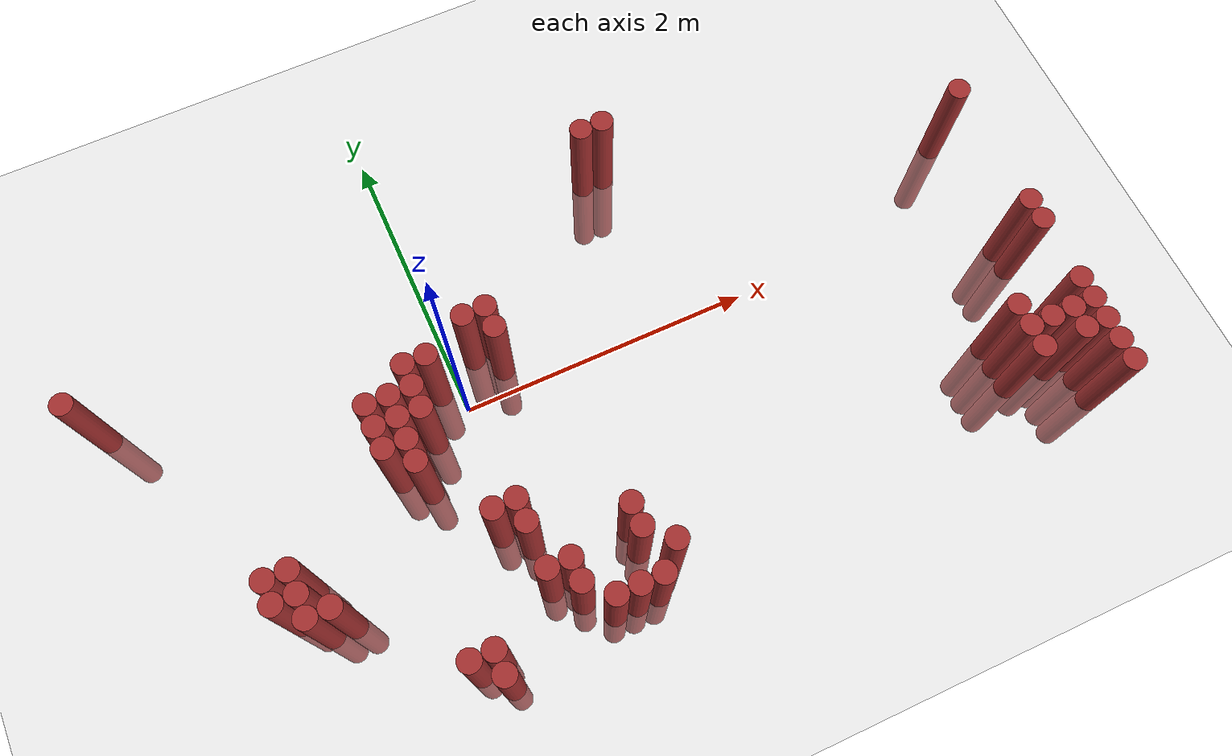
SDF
<sdf version="1.6">
 <world name="default">
  <model name="ground_plane">
   <static>1</static>
   <link name="link">
    <collision name="collision">
     <geometry><plane><normal>0 0 1</normal><size>100 100</size></plane></geometry>
     <surface><friction><ode><mu>100</mu><mu2>50</mu2></ode></friction></surface>
    </collision>
    <visual name="visual">
     <cast_shadows>0</cast_shadows>
     <geometry><plane><normal>0 0 1</normal><size>100 100</size></plane></geometry>
     <material>
      <script><uri>file://media/materials/scripts/gazebo.material</uri><name>Gazebo/Grey</name></script>
     </material>
    </visual>
   </link>
  </model>
  <model name="unit_cylinder_334">
   <static>1</static>
   <pose>-2.225000 0.775000 0.000000 0.000000 0.000000 0.000000</pose>
   <link name="link">
    <inertial>
     <mass>1</mass>
     <inertia><ixx>0.145833</ixx><ixy>0</ixy><ixz>0</ixz><iyy>0.145833</iyy><iyz>0</iyz><izz>0.125</izz></inertia>
    </inertial>
    <collision name="collision">
     <geometry><cylinder><radius>0.075000</radius><length>1.5</length></cylinder></geometry>
    </collision>
    <visual name="visual">
     <geometry><cylinder><radius>0.075000</radius><length>1.5</length></cylinder></geometry>
     <material>
      <ambient>0.648000 0.192000 0.192000 1</ambient>
      <diffuse>0.648000 0.192000 0.192000 1</diffuse>
     </material>
     <material>
      <script><name>Gazebo/Grey</name><uri>file://media/materials/scripts/gazebo.material</uri></script>
     </material>
    </visual>
   </link>
  </model>
  <model name="unit_cylinder_353">
   <static>1</static>
   <pose>-1.475000 -0.875000 0.000000 0.000000 0.000000 0.000000</pose>
   <link name="link">
    <inertial>
     <mass>1</mass>
     <inertia><ixx>0.145833</ixx><ixy>0</ixy><ixz>0</ixz><iyy>0.145833</iyy><iyz>0</iyz><izz>0.125</izz></inertia>
    </inertial>
    <collision name="collision">
     <geometry><cylinder><radius>0.075000</radius><length>1.5</length></cylinder></geometry>
    </collision>
    <visual name="visual">
     <geometry><cylinder><radius>0.075000</radius><length>1.5</length></cylinder></geometry>
     <material>
      <ambient>0.648000 0.192000 0.192000 1</ambient>
      <diffuse>0.648000 0.192000 0.192000 1</diffuse>
     </material>
     <material>
      <script><name>Gazebo/Grey</name><uri>file://media/materials/scripts/gazebo.material</uri></script>
     </material>
    </visual>
   </link>
  </model>
  <model name="unit_cylinder_354">
   <static>1</static>
   <pose>-1.475000 -0.725000 0.000000 0.000000 0.000000 0.000000</pose>
   <link name="link">
    <inertial>
     <mass>1</mass>
     <inertia><ixx>0.145833</ixx><ixy>0</ixy><ixz>0</ixz><iyy>0.145833</iyy><iyz>0</iyz><izz>0.125</izz></inertia>
    </inertial>
    <collision name="collision">
     <geometry><cylinder><radius>0.075000</radius><length>1.5</length></cylinder></geometry>
    </collision>
    <visual name="visual">
     <geometry><cylinder><radius>0.075000</radius><length>1.5</length></cylinder></geometry>
     <material>
      <ambient>0.648000 0.192000 0.192000 1</ambient>
      <diffuse>0.648000 0.192000 0.192000 1</diffuse>
     </material>
     <material>
      <script><name>Gazebo/Grey</name><uri>file://media/materials/scripts/gazebo.material</uri></script>
     </material>
    </visual>
   </link>
  </model>
  <model name="unit_cylinder_361">
   <static>1</static>
   <pose>-1.325000 -1.025000 0.000000 0.000000 0.000000 0.000000</pose>
   <link name="link">
    <inertial>
     <mass>1</mass>
     <inertia><ixx>0.145833</ixx><ixy>0</ixy><ixz>0</ixz><iyy>0.145833</iyy><iyz>0</iyz><izz>0.125</izz></inertia>
    </inertial>
    <collision name="collision">
     <geometry><cylinder><radius>0.075000</radius><length>1.5</length></cylinder></geometry>
    </collision>
    <visual name="visual">
     <geometry><cylinder><radius>0.075000</radius><length>1.5</length></cylinder></geometry>
     <material>
      <ambient>0.648000 0.192000 0.192000 1</ambient>
      <diffuse>0.648000 0.192000 0.192000 1</diffuse>
     </material>
     <material>
      <script><name>Gazebo/Grey</name><uri>file://media/materials/scripts/gazebo.material</uri></script>
     </material>
    </visual>
   </link>
  </model>
  <model name="unit_cylinder_362">
   <static>1</static>
   <pose>-1.325000 -0.875000 0.000000 0.000000 0.000000 0.000000</pose>
   <link name="link">
    <inertial>
     <mass>1</mass>
     <inertia><ixx>0.145833</ixx><ixy>0</ixy><ixz>0</ixz><iyy>0.145833</iyy><iyz>0</iyz><izz>0.125</izz></inertia>
    </inertial>
    <collision name="collision">
     <geometry><cylinder><radius>0.075000</radius><length>1.5</length></cylinder></geometry>
    </collision>
    <visual name="visual">
     <geometry><cylinder><radius>0.075000</radius><length>1.5</length></cylinder></geometry>
     <material>
      <ambient>0.648000 0.192000 0.192000 1</ambient>
      <diffuse>0.648000 0.192000 0.192000 1</diffuse>
     </material>
     <material>
      <script><name>Gazebo/Grey</name><uri>file://media/materials/scripts/gazebo.material</uri></script>
     </material>
    </visual>
   </link>
  </model>
  <model name="unit_cylinder_363">
   <static>1</static>
   <pose>-1.325000 -0.725000 0.000000 0.000000 0.000000 0.000000</pose>
   <link name="link">
    <inertial>
     <mass>1</mass>
     <inertia><ixx>0.145833</ixx><ixy>0</ixy><ixz>0</ixz><iyy>0.145833</iyy><iyz>0</iyz><izz>0.125</izz></inertia>
    </inertial>
    <collision name="collision">
     <geometry><cylinder><radius>0.075000</radius><length>1.5</length></cylinder></geometry>
    </collision>
    <visual name="visual">
     <geometry><cylinder><radius>0.075000</radius><length>1.5</length></cylinder></geometry>
     <material>
      <ambient>0.648000 0.192000 0.192000 1</ambient>
      <diffuse>0.648000 0.192000 0.192000 1</diffuse>
     </material>
     <material>
      <script><name>Gazebo/Grey</name><uri>file://media/materials/scripts/gazebo.material</uri></script>
     </material>
    </visual>
   </link>
  </model>
  <model name="unit_cylinder_369">
   <static>1</static>
   <pose>-1.175000 -1.025000 0.000000 0.000000 0.000000 0.000000</pose>
   <link name="link">
    <inertial>
     <mass>1</mass>
     <inertia><ixx>0.145833</ixx><ixy>0</ixy><ixz>0</ixz><iyy>0.145833</iyy><iyz>0</iyz><izz>0.125</izz></inertia>
    </inertial>
    <collision name="collision">
     <geometry><cylinder><radius>0.075000</radius><length>1.5</length></cylinder></geometry>
    </collision>
    <visual name="visual">
     <geometry><cylinder><radius>0.075000</radius><length>1.5</length></cylinder></geometry>
     <material>
      <ambient>0.648000 0.192000 0.192000 1</ambient>
      <diffuse>0.648000 0.192000 0.192000 1</diffuse>
     </material>
     <material>
      <script><name>Gazebo/Grey</name><uri>file://media/materials/scripts/gazebo.material</uri></script>
     </material>
    </visual>
   </link>
  </model>
  <model name="unit_cylinder_379">
   <static>1</static>
   <pose>-0.575000 -1.625000 0.000000 0.000000 0.000000 0.000000</pose>
   <link name="link">
    <inertial>
     <mass>1</mass>
     <inertia><ixx>0.145833</ixx><ixy>0</ixy><ixz>0</ixz><iyy>0.145833</iyy><iyz>0</iyz><izz>0.125</izz></inertia>
    </inertial>
    <collision name="collision">
     <geometry><cylinder><radius>0.075000</radius><length>1.5</length></cylinder></geometry>
    </collision>
    <visual name="visual">
     <geometry><cylinder><radius>0.075000</radius><length>1.5</length></cylinder></geometry>
     <material>
      <ambient>0.648000 0.192000 0.192000 1</ambient>
      <diffuse>0.648000 0.192000 0.192000 1</diffuse>
     </material>
     <material>
      <script><name>Gazebo/Grey</name><uri>file://media/materials/scripts/gazebo.material</uri></script>
     </material>
    </visual>
   </link>
  </model>
  <model name="unit_cylinder_380">
   <static>1</static>
   <pose>-0.575000 -0.275000 0.000000 0.000000 0.000000 0.000000</pose>
   <link name="link">
    <inertial>
     <mass>1</mass>
     <inertia><ixx>0.145833</ixx><ixy>0</ixy><ixz>0</ixz><iyy>0.145833</iyy><iyz>0</iyz><izz>0.125</izz></inertia>
    </inertial>
    <collision name="collision">
     <geometry><cylinder><radius>0.075000</radius><length>1.5</length></cylinder></geometry>
    </collision>
    <visual name="visual">
     <geometry><cylinder><radius>0.075000</radius><length>1.5</length></cylinder></geometry>
     <material>
      <ambient>0.648000 0.192000 0.192000 1</ambient>
      <diffuse>0.648000 0.192000 0.192000 1</diffuse>
     </material>
     <material>
      <script><name>Gazebo/Grey</name><uri>file://media/materials/scripts/gazebo.material</uri></script>
     </material>
    </visual>
   </link>
  </model>
  <model name="unit_cylinder_381">
   <static>1</static>
   <pose>-0.575000 -0.125000 0.000000 0.000000 0.000000 0.000000</pose>
   <link name="link">
    <inertial>
     <mass>1</mass>
     <inertia><ixx>0.145833</ixx><ixy>0</ixy><ixz>0</ixz><iyy>0.145833</iyy><iyz>0</iyz><izz>0.125</izz></inertia>
    </inertial>
    <collision name="collision">
     <geometry><cylinder><radius>0.075000</radius><length>1.5</length></cylinder></geometry>
    </collision>
    <visual name="visual">
     <geometry><cylinder><radius>0.075000</radius><length>1.5</length></cylinder></geometry>
     <material>
      <ambient>0.648000 0.192000 0.192000 1</ambient>
      <diffuse>0.648000 0.192000 0.192000 1</diffuse>
     </material>
     <material>
      <script><name>Gazebo/Grey</name><uri>file://media/materials/scripts/gazebo.material</uri></script>
     </material>
    </visual>
   </link>
  </model>
  <model name="unit_cylinder_382">
   <static>1</static>
   <pose>-0.575000 0.025000 0.000000 0.000000 0.000000 0.000000</pose>
   <link name="link">
    <inertial>
     <mass>1</mass>
     <inertia><ixx>0.145833</ixx><ixy>0</ixy><ixz>0</ixz><iyy>0.145833</iyy><iyz>0</iyz><izz>0.125</izz></inertia>
    </inertial>
    <collision name="collision">
     <geometry><cylinder><radius>0.075000</radius><length>1.5</length></cylinder></geometry>
    </collision>
    <visual name="visual">
     <geometry><cylinder><radius>0.075000</radius><length>1.5</length></cylinder></geometry>
     <material>
      <ambient>0.648000 0.192000 0.192000 1</ambient>
      <diffuse>0.648000 0.192000 0.192000 1</diffuse>
     </material>
     <material>
      <script><name>Gazebo/Grey</name><uri>file://media/materials/scripts/gazebo.material</uri></script>
     </material>
    </visual>
   </link>
  </model>
  <model name="unit_cylinder_385">
   <static>1</static>
   <pose>-0.425000 -1.775000 0.000000 0.000000 0.000000 0.000000</pose>
   <link name="link">
    <inertial>
     <mass>1</mass>
     <inertia><ixx>0.145833</ixx><ixy>0</ixy><ixz>0</ixz><iyy>0.145833</iyy><iyz>0</iyz><izz>0.125</izz></inertia>
    </inertial>
    <collision name="collision">
     <geometry><cylinder><radius>0.075000</radius><length>1.5</length></cylinder></geometry>
    </collision>
    <visual name="visual">
     <geometry><cylinder><radius>0.075000</radius><length>1.5</length></cylinder></geometry>
     <material>
      <ambient>0.648000 0.192000 0.192000 1</ambient>
      <diffuse>0.648000 0.192000 0.192000 1</diffuse>
     </material>
     <material>
      <script><name>Gazebo/Grey</name><uri>file://media/materials/scripts/gazebo.material</uri></script>
     </material>
    </visual>
   </link>
  </model>
  <model name="unit_cylinder_386">
   <static>1</static>
   <pose>-0.425000 -1.625000 0.000000 0.000000 0.000000 0.000000</pose>
   <link name="link">
    <inertial>
     <mass>1</mass>
     <inertia><ixx>0.145833</ixx><ixy>0</ixy><ixz>0</ixz><iyy>0.145833</iyy><iyz>0</iyz><izz>0.125</izz></inertia>
    </inertial>
    <collision name="collision">
     <geometry><cylinder><radius>0.075000</radius><length>1.5</length></cylinder></geometry>
    </collision>
    <visual name="visual">
     <geometry><cylinder><radius>0.075000</radius><length>1.5</length></cylinder></geometry>
     <material>
      <ambient>0.648000 0.192000 0.192000 1</ambient>
      <diffuse>0.648000 0.192000 0.192000 1</diffuse>
     </material>
     <material>
      <script><name>Gazebo/Grey</name><uri>file://media/materials/scripts/gazebo.material</uri></script>
     </material>
    </visual>
   </link>
  </model>
  <model name="unit_cylinder_387">
   <static>1</static>
   <pose>-0.425000 -0.425000 0.000000 0.000000 0.000000 0.000000</pose>
   <link name="link">
    <inertial>
     <mass>1</mass>
     <inertia><ixx>0.145833</ixx><ixy>0</ixy><ixz>0</ixz><iyy>0.145833</iyy><iyz>0</iyz><izz>0.125</izz></inertia>
    </inertial>
    <collision name="collision">
     <geometry><cylinder><radius>0.075000</radius><length>1.5</length></cylinder></geometry>
    </collision>
    <visual name="visual">
     <geometry><cylinder><radius>0.075000</radius><length>1.5</length></cylinder></geometry>
     <material>
      <ambient>0.648000 0.192000 0.192000 1</ambient>
      <diffuse>0.648000 0.192000 0.192000 1</diffuse>
     </material>
     <material>
      <script><name>Gazebo/Grey</name><uri>file://media/materials/scripts/gazebo.material</uri></script>
     </material>
    </visual>
   </link>
  </model>
  <model name="unit_cylinder_388">
   <static>1</static>
   <pose>-0.425000 -0.275000 0.000000 0.000000 0.000000 0.000000</pose>
   <link name="link">
    <inertial>
     <mass>1</mass>
     <inertia><ixx>0.145833</ixx><ixy>0</ixy><ixz>0</ixz><iyy>0.145833</iyy><iyz>0</iyz><izz>0.125</izz></inertia>
    </inertial>
    <collision name="collision">
     <geometry><cylinder><radius>0.075000</radius><length>1.5</length></cylinder></geometry>
    </collision>
    <visual name="visual">
     <geometry><cylinder><radius>0.075000</radius><length>1.5</length></cylinder></geometry>
     <material>
      <ambient>0.648000 0.192000 0.192000 1</ambient>
      <diffuse>0.648000 0.192000 0.192000 1</diffuse>
     </material>
     <material>
      <script><name>Gazebo/Grey</name><uri>file://media/materials/scripts/gazebo.material</uri></script>
     </material>
    </visual>
   </link>
  </model>
  <model name="unit_cylinder_389">
   <static>1</static>
   <pose>-0.425000 -0.125000 0.000000 0.000000 0.000000 0.000000</pose>
   <link name="link">
    <inertial>
     <mass>1</mass>
     <inertia><ixx>0.145833</ixx><ixy>0</ixy><ixz>0</ixz><iyy>0.145833</iyy><iyz>0</iyz><izz>0.125</izz></inertia>
    </inertial>
    <collision name="collision">
     <geometry><cylinder><radius>0.075000</radius><length>1.5</length></cylinder></geometry>
    </collision>
    <visual name="visual">
     <geometry><cylinder><radius>0.075000</radius><length>1.5</length></cylinder></geometry>
     <material>
      <ambient>0.648000 0.192000 0.192000 1</ambient>
      <diffuse>0.648000 0.192000 0.192000 1</diffuse>
     </material>
     <material>
      <script><name>Gazebo/Grey</name><uri>file://media/materials/scripts/gazebo.material</uri></script>
     </material>
    </visual>
   </link>
  </model>
  <model name="unit_cylinder_390">
   <static>1</static>
   <pose>-0.425000 0.025000 0.000000 0.000000 0.000000 0.000000</pose>
   <link name="link">
    <inertial>
     <mass>1</mass>
     <inertia><ixx>0.145833</ixx><ixy>0</ixy><ixz>0</ixz><iyy>0.145833</iyy><iyz>0</iyz><izz>0.125</izz></inertia>
    </inertial>
    <collision name="collision">
     <geometry><cylinder><radius>0.075000</radius><length>1.5</length></cylinder></geometry>
    </collision>
    <visual name="visual">
     <geometry><cylinder><radius>0.075000</radius><length>1.5</length></cylinder></geometry>
     <material>
      <ambient>0.648000 0.192000 0.192000 1</ambient>
      <diffuse>0.648000 0.192000 0.192000 1</diffuse>
     </material>
     <material>
      <script><name>Gazebo/Grey</name><uri>file://media/materials/scripts/gazebo.material</uri></script>
     </material>
    </visual>
   </link>
  </model>
  <model name="unit_cylinder_393">
   <static>1</static>
   <pose>-0.275000 -0.125000 0.000000 0.000000 0.000000 0.000000</pose>
   <link name="link">
    <inertial>
     <mass>1</mass>
     <inertia><ixx>0.145833</ixx><ixy>0</ixy><ixz>0</ixz><iyy>0.145833</iyy><iyz>0</iyz><izz>0.125</izz></inertia>
    </inertial>
    <collision name="collision">
     <geometry><cylinder><radius>0.075000</radius><length>1.5</length></cylinder></geometry>
    </collision>
    <visual name="visual">
     <geometry><cylinder><radius>0.075000</radius><length>1.5</length></cylinder></geometry>
     <material>
      <ambient>0.648000 0.192000 0.192000 1</ambient>
      <diffuse>0.648000 0.192000 0.192000 1</diffuse>
     </material>
     <material>
      <script><name>Gazebo/Grey</name><uri>file://media/materials/scripts/gazebo.material</uri></script>
     </material>
    </visual>
   </link>
  </model>
  <model name="unit_cylinder_394">
   <static>1</static>
   <pose>-0.275000 0.025000 0.000000 0.000000 0.000000 0.000000</pose>
   <link name="link">
    <inertial>
     <mass>1</mass>
     <inertia><ixx>0.145833</ixx><ixy>0</ixy><ixz>0</ixz><iyy>0.145833</iyy><iyz>0</iyz><izz>0.125</izz></inertia>
    </inertial>
    <collision name="collision">
     <geometry><cylinder><radius>0.075000</radius><length>1.5</length></cylinder></geometry>
    </collision>
    <visual name="visual">
     <geometry><cylinder><radius>0.075000</radius><length>1.5</length></cylinder></geometry>
     <material>
      <ambient>0.648000 0.192000 0.192000 1</ambient>
      <diffuse>0.648000 0.192000 0.192000 1</diffuse>
     </material>
     <material>
      <script><name>Gazebo/Grey</name><uri>file://media/materials/scripts/gazebo.material</uri></script>
     </material>
    </visual>
   </link>
  </model>
  <model name="unit_cylinder_395">
   <static>1</static>
   <pose>-0.275000 0.175000 0.000000 0.000000 0.000000 0.000000</pose>
   <link name="link">
    <inertial>
     <mass>1</mass>
     <inertia><ixx>0.145833</ixx><ixy>0</ixy><ixz>0</ixz><iyy>0.145833</iyy><iyz>0</iyz><izz>0.125</izz></inertia>
    </inertial>
    <collision name="collision">
     <geometry><cylinder><radius>0.075000</radius><length>1.5</length></cylinder></geometry>
    </collision>
    <visual name="visual">
     <geometry><cylinder><radius>0.075000</radius><length>1.5</length></cylinder></geometry>
     <material>
      <ambient>0.648000 0.192000 0.192000 1</ambient>
      <diffuse>0.648000 0.192000 0.192000 1</diffuse>
     </material>
     <material>
      <script><name>Gazebo/Grey</name><uri>file://media/materials/scripts/gazebo.material</uri></script>
     </material>
    </visual>
   </link>
  </model>
  <model name="unit_cylinder_398">
   <static>1</static>
   <pose>-0.125000 -0.875000 0.000000 0.000000 0.000000 0.000000</pose>
   <link name="link">
    <inertial>
     <mass>1</mass>
     <inertia><ixx>0.145833</ixx><ixy>0</ixy><ixz>0</ixz><iyy>0.145833</iyy><iyz>0</iyz><izz>0.125</izz></inertia>
    </inertial>
    <collision name="collision">
     <geometry><cylinder><radius>0.075000</radius><length>1.5</length></cylinder></geometry>
    </collision>
    <visual name="visual">
     <geometry><cylinder><radius>0.075000</radius><length>1.5</length></cylinder></geometry>
     <material>
      <ambient>0.648000 0.192000 0.192000 1</ambient>
      <diffuse>0.648000 0.192000 0.192000 1</diffuse>
     </material>
     <material>
      <script><name>Gazebo/Grey</name><uri>file://media/materials/scripts/gazebo.material</uri></script>
     </material>
    </visual>
   </link>
  </model>
  <model name="unit_cylinder_399">
   <static>1</static>
   <pose>-0.125000 0.175000 0.000000 0.000000 0.000000 0.000000</pose>
   <link name="link">
    <inertial>
     <mass>1</mass>
     <inertia><ixx>0.145833</ixx><ixy>0</ixy><ixz>0</ixz><iyy>0.145833</iyy><iyz>0</iyz><izz>0.125</izz></inertia>
    </inertial>
    <collision name="collision">
     <geometry><cylinder><radius>0.075000</radius><length>1.5</length></cylinder></geometry>
    </collision>
    <visual name="visual">
     <geometry><cylinder><radius>0.075000</radius><length>1.5</length></cylinder></geometry>
     <material>
      <ambient>0.648000 0.192000 0.192000 1</ambient>
      <diffuse>0.648000 0.192000 0.192000 1</diffuse>
     </material>
     <material>
      <script><name>Gazebo/Grey</name><uri>file://media/materials/scripts/gazebo.material</uri></script>
     </material>
    </visual>
   </link>
  </model>
  <model name="unit_cylinder_402">
   <static>1</static>
   <pose>0.025000 -1.325000 0.000000 0.000000 0.000000 0.000000</pose>
   <link name="link">
    <inertial>
     <mass>1</mass>
     <inertia><ixx>0.145833</ixx><ixy>0</ixy><ixz>0</ixz><iyy>0.145833</iyy><iyz>0</iyz><izz>0.125</izz></inertia>
    </inertial>
    <collision name="collision">
     <geometry><cylinder><radius>0.075000</radius><length>1.5</length></cylinder></geometry>
    </collision>
    <visual name="visual">
     <geometry><cylinder><radius>0.075000</radius><length>1.5</length></cylinder></geometry>
     <material>
      <ambient>0.648000 0.192000 0.192000 1</ambient>
      <diffuse>0.648000 0.192000 0.192000 1</diffuse>
     </material>
     <material>
      <script><name>Gazebo/Grey</name><uri>file://media/materials/scripts/gazebo.material</uri></script>
     </material>
    </visual>
   </link>
  </model>
  <model name="unit_cylinder_403">
   <static>1</static>
   <pose>0.025000 -1.025000 0.000000 0.000000 0.000000 0.000000</pose>
   <link name="link">
    <inertial>
     <mass>1</mass>
     <inertia><ixx>0.145833</ixx><ixy>0</ixy><ixz>0</ixz><iyy>0.145833</iyy><iyz>0</iyz><izz>0.125</izz></inertia>
    </inertial>
    <collision name="collision">
     <geometry><cylinder><radius>0.075000</radius><length>1.5</length></cylinder></geometry>
    </collision>
    <visual name="visual">
     <geometry><cylinder><radius>0.075000</radius><length>1.5</length></cylinder></geometry>
     <material>
      <ambient>0.648000 0.192000 0.192000 1</ambient>
      <diffuse>0.648000 0.192000 0.192000 1</diffuse>
     </material>
     <material>
      <script><name>Gazebo/Grey</name><uri>file://media/materials/scripts/gazebo.material</uri></script>
     </material>
    </visual>
   </link>
  </model>
  <model name="unit_cylinder_404">
   <static>1</static>
   <pose>0.025000 -0.875000 0.000000 0.000000 0.000000 0.000000</pose>
   <link name="link">
    <inertial>
     <mass>1</mass>
     <inertia><ixx>0.145833</ixx><ixy>0</ixy><ixz>0</ixz><iyy>0.145833</iyy><iyz>0</iyz><izz>0.125</izz></inertia>
    </inertial>
    <collision name="collision">
     <geometry><cylinder><radius>0.075000</radius><length>1.5</length></cylinder></geometry>
    </collision>
    <visual name="visual">
     <geometry><cylinder><radius>0.075000</radius><length>1.5</length></cylinder></geometry>
     <material>
      <ambient>0.648000 0.192000 0.192000 1</ambient>
      <diffuse>0.648000 0.192000 0.192000 1</diffuse>
     </material>
     <material>
      <script><name>Gazebo/Grey</name><uri>file://media/materials/scripts/gazebo.material</uri></script>
     </material>
    </visual>
   </link>
  </model>
  <model name="unit_cylinder_405">
   <static>1</static>
   <pose>0.175000 -1.475000 0.000000 0.000000 0.000000 0.000000</pose>
   <link name="link">
    <inertial>
     <mass>1</mass>
     <inertia><ixx>0.145833</ixx><ixy>0</ixy><ixz>0</ixz><iyy>0.145833</iyy><iyz>0</iyz><izz>0.125</izz></inertia>
    </inertial>
    <collision name="collision">
     <geometry><cylinder><radius>0.075000</radius><length>1.5</length></cylinder></geometry>
    </collision>
    <visual name="visual">
     <geometry><cylinder><radius>0.075000</radius><length>1.5</length></cylinder></geometry>
     <material>
      <ambient>0.648000 0.192000 0.192000 1</ambient>
      <diffuse>0.648000 0.192000 0.192000 1</diffuse>
     </material>
     <material>
      <script><name>Gazebo/Grey</name><uri>file://media/materials/scripts/gazebo.material</uri></script>
     </material>
    </visual>
   </link>
  </model>
  <model name="unit_cylinder_406">
   <static>1</static>
   <pose>0.175000 -1.325000 0.000000 0.000000 0.000000 0.000000</pose>
   <link name="link">
    <inertial>
     <mass>1</mass>
     <inertia><ixx>0.145833</ixx><ixy>0</ixy><ixz>0</ixz><iyy>0.145833</iyy><iyz>0</iyz><izz>0.125</izz></inertia>
    </inertial>
    <collision name="collision">
     <geometry><cylinder><radius>0.075000</radius><length>1.5</length></cylinder></geometry>
    </collision>
    <visual name="visual">
     <geometry><cylinder><radius>0.075000</radius><length>1.5</length></cylinder></geometry>
     <material>
      <ambient>0.648000 0.192000 0.192000 1</ambient>
      <diffuse>0.648000 0.192000 0.192000 1</diffuse>
     </material>
     <material>
      <script><name>Gazebo/Grey</name><uri>file://media/materials/scripts/gazebo.material</uri></script>
     </material>
    </visual>
   </link>
  </model>
  <model name="unit_cylinder_407">
   <static>1</static>
   <pose>0.175000 0.325000 0.000000 0.000000 0.000000 0.000000</pose>
   <link name="link">
    <inertial>
     <mass>1</mass>
     <inertia><ixx>0.145833</ixx><ixy>0</ixy><ixz>0</ixz><iyy>0.145833</iyy><iyz>0</iyz><izz>0.125</izz></inertia>
    </inertial>
    <collision name="collision">
     <geometry><cylinder><radius>0.075000</radius><length>1.5</length></cylinder></geometry>
    </collision>
    <visual name="visual">
     <geometry><cylinder><radius>0.075000</radius><length>1.5</length></cylinder></geometry>
     <material>
      <ambient>0.648000 0.192000 0.192000 1</ambient>
      <diffuse>0.648000 0.192000 0.192000 1</diffuse>
     </material>
     <material>
      <script><name>Gazebo/Grey</name><uri>file://media/materials/scripts/gazebo.material</uri></script>
     </material>
    </visual>
   </link>
  </model>
  <model name="unit_cylinder_408">
   <static>1</static>
   <pose>0.325000 -1.625000 0.000000 0.000000 0.000000 0.000000</pose>
   <link name="link">
    <inertial>
     <mass>1</mass>
     <inertia><ixx>0.145833</ixx><ixy>0</ixy><ixz>0</ixz><iyy>0.145833</iyy><iyz>0</iyz><izz>0.125</izz></inertia>
    </inertial>
    <collision name="collision">
     <geometry><cylinder><radius>0.075000</radius><length>1.5</length></cylinder></geometry>
    </collision>
    <visual name="visual">
     <geometry><cylinder><radius>0.075000</radius><length>1.5</length></cylinder></geometry>
     <material>
      <ambient>0.648000 0.192000 0.192000 1</ambient>
      <diffuse>0.648000 0.192000 0.192000 1</diffuse>
     </material>
     <material>
      <script><name>Gazebo/Grey</name><uri>file://media/materials/scripts/gazebo.material</uri></script>
     </material>
    </visual>
   </link>
  </model>
  <model name="unit_cylinder_409">
   <static>1</static>
   <pose>0.325000 0.175000 0.000000 0.000000 0.000000 0.000000</pose>
   <link name="link">
    <inertial>
     <mass>1</mass>
     <inertia><ixx>0.145833</ixx><ixy>0</ixy><ixz>0</ixz><iyy>0.145833</iyy><iyz>0</iyz><izz>0.125</izz></inertia>
    </inertial>
    <collision name="collision">
     <geometry><cylinder><radius>0.075000</radius><length>1.5</length></cylinder></geometry>
    </collision>
    <visual name="visual">
     <geometry><cylinder><radius>0.075000</radius><length>1.5</length></cylinder></geometry>
     <material>
      <ambient>0.648000 0.192000 0.192000 1</ambient>
      <diffuse>0.648000 0.192000 0.192000 1</diffuse>
     </material>
     <material>
      <script><name>Gazebo/Grey</name><uri>file://media/materials/scripts/gazebo.material</uri></script>
     </material>
    </visual>
   </link>
  </model>
  <model name="unit_cylinder_410">
   <static>1</static>
   <pose>0.325000 0.325000 0.000000 0.000000 0.000000 0.000000</pose>
   <link name="link">
    <inertial>
     <mass>1</mass>
     <inertia><ixx>0.145833</ixx><ixy>0</ixy><ixz>0</ixz><iyy>0.145833</iyy><iyz>0</iyz><izz>0.125</izz></inertia>
    </inertial>
    <collision name="collision">
     <geometry><cylinder><radius>0.075000</radius><length>1.5</length></cylinder></geometry>
    </collision>
    <visual name="visual">
     <geometry><cylinder><radius>0.075000</radius><length>1.5</length></cylinder></geometry>
     <material>
      <ambient>0.648000 0.192000 0.192000 1</ambient>
      <diffuse>0.648000 0.192000 0.192000 1</diffuse>
     </material>
     <material>
      <script><name>Gazebo/Grey</name><uri>file://media/materials/scripts/gazebo.material</uri></script>
     </material>
    </visual>
   </link>
  </model>
  <model name="unit_cylinder_412">
   <static>1</static>
   <pose>0.475000 -1.625000 0.000000 0.000000 0.000000 0.000000</pose>
   <link name="link">
    <inertial>
     <mass>1</mass>
     <inertia><ixx>0.145833</ixx><ixy>0</ixy><ixz>0</ixz><iyy>0.145833</iyy><iyz>0</iyz><izz>0.125</izz></inertia>
    </inertial>
    <collision name="collision">
     <geometry><cylinder><radius>0.075000</radius><length>1.5</length></cylinder></geometry>
    </collision>
    <visual name="visual">
     <geometry><cylinder><radius>0.075000</radius><length>1.5</length></cylinder></geometry>
     <material>
      <ambient>0.648000 0.192000 0.192000 1</ambient>
      <diffuse>0.648000 0.192000 0.192000 1</diffuse>
     </material>
     <material>
      <script><name>Gazebo/Grey</name><uri>file://media/materials/scripts/gazebo.material</uri></script>
     </material>
    </visual>
   </link>
  </model>
  <model name="unit_cylinder_413">
   <static>1</static>
   <pose>0.625000 -1.625000 0.000000 0.000000 0.000000 0.000000</pose>
   <link name="link">
    <inertial>
     <mass>1</mass>
     <inertia><ixx>0.145833</ixx><ixy>0</ixy><ixz>0</ixz><iyy>0.145833</iyy><iyz>0</iyz><izz>0.125</izz></inertia>
    </inertial>
    <collision name="collision">
     <geometry><cylinder><radius>0.075000</radius><length>1.5</length></cylinder></geometry>
    </collision>
    <visual name="visual">
     <geometry><cylinder><radius>0.075000</radius><length>1.5</length></cylinder></geometry>
     <material>
      <ambient>0.648000 0.192000 0.192000 1</ambient>
      <diffuse>0.648000 0.192000 0.192000 1</diffuse>
     </material>
     <material>
      <script><name>Gazebo/Grey</name><uri>file://media/materials/scripts/gazebo.material</uri></script>
     </material>
    </visual>
   </link>
  </model>
  <model name="unit_cylinder_414">
   <static>1</static>
   <pose>0.625000 -1.325000 0.000000 0.000000 0.000000 0.000000</pose>
   <link name="link">
    <inertial>
     <mass>1</mass>
     <inertia><ixx>0.145833</ixx><ixy>0</ixy><ixz>0</ixz><iyy>0.145833</iyy><iyz>0</iyz><izz>0.125</izz></inertia>
    </inertial>
    <collision name="collision">
     <geometry><cylinder><radius>0.075000</radius><length>1.5</length></cylinder></geometry>
    </collision>
    <visual name="visual">
     <geometry><cylinder><radius>0.075000</radius><length>1.5</length></cylinder></geometry>
     <material>
      <ambient>0.648000 0.192000 0.192000 1</ambient>
      <diffuse>0.648000 0.192000 0.192000 1</diffuse>
     </material>
     <material>
      <script><name>Gazebo/Grey</name><uri>file://media/materials/scripts/gazebo.material</uri></script>
     </material>
    </visual>
   </link>
  </model>
  <model name="unit_cylinder_415">
   <static>1</static>
   <pose>0.625000 -1.175000 0.000000 0.000000 0.000000 0.000000</pose>
   <link name="link">
    <inertial>
     <mass>1</mass>
     <inertia><ixx>0.145833</ixx><ixy>0</ixy><ixz>0</ixz><iyy>0.145833</iyy><iyz>0</iyz><izz>0.125</izz></inertia>
    </inertial>
    <collision name="collision">
     <geometry><cylinder><radius>0.075000</radius><length>1.5</length></cylinder></geometry>
    </collision>
    <visual name="visual">
     <geometry><cylinder><radius>0.075000</radius><length>1.5</length></cylinder></geometry>
     <material>
      <ambient>0.648000 0.192000 0.192000 1</ambient>
      <diffuse>0.648000 0.192000 0.192000 1</diffuse>
     </material>
     <material>
      <script><name>Gazebo/Grey</name><uri>file://media/materials/scripts/gazebo.material</uri></script>
     </material>
    </visual>
   </link>
  </model>
  <model name="unit_cylinder_416">
   <static>1</static>
   <pose>0.775000 -1.475000 0.000000 0.000000 0.000000 0.000000</pose>
   <link name="link">
    <inertial>
     <mass>1</mass>
     <inertia><ixx>0.145833</ixx><ixy>0</ixy><ixz>0</ixz><iyy>0.145833</iyy><iyz>0</iyz><izz>0.125</izz></inertia>
    </inertial>
    <collision name="collision">
     <geometry><cylinder><radius>0.075000</radius><length>1.5</length></cylinder></geometry>
    </collision>
    <visual name="visual">
     <geometry><cylinder><radius>0.075000</radius><length>1.5</length></cylinder></geometry>
     <material>
      <ambient>0.648000 0.192000 0.192000 1</ambient>
      <diffuse>0.648000 0.192000 0.192000 1</diffuse>
     </material>
     <material>
      <script><name>Gazebo/Grey</name><uri>file://media/materials/scripts/gazebo.material</uri></script>
     </material>
    </visual>
   </link>
  </model>
  <model name="unit_cylinder_417">
   <static>1</static>
   <pose>1.375000 1.225000 0.000000 0.000000 0.000000 0.000000</pose>
   <link name="link">
    <inertial>
     <mass>1</mass>
     <inertia><ixx>0.145833</ixx><ixy>0</ixy><ixz>0</ixz><iyy>0.145833</iyy><iyz>0</iyz><izz>0.125</izz></inertia>
    </inertial>
    <collision name="collision">
     <geometry><cylinder><radius>0.075000</radius><length>1.5</length></cylinder></geometry>
    </collision>
    <visual name="visual">
     <geometry><cylinder><radius>0.075000</radius><length>1.5</length></cylinder></geometry>
     <material>
      <ambient>0.648000 0.192000 0.192000 1</ambient>
      <diffuse>0.648000 0.192000 0.192000 1</diffuse>
     </material>
     <material>
      <script><name>Gazebo/Grey</name><uri>file://media/materials/scripts/gazebo.material</uri></script>
     </material>
    </visual>
   </link>
  </model>
  <model name="unit_cylinder_418">
   <static>1</static>
   <pose>1.525000 1.225000 0.000000 0.000000 0.000000 0.000000</pose>
   <link name="link">
    <inertial>
     <mass>1</mass>
     <inertia><ixx>0.145833</ixx><ixy>0</ixy><ixz>0</ixz><iyy>0.145833</iyy><iyz>0</iyz><izz>0.125</izz></inertia>
    </inertial>
    <collision name="collision">
     <geometry><cylinder><radius>0.075000</radius><length>1.5</length></cylinder></geometry>
    </collision>
    <visual name="visual">
     <geometry><cylinder><radius>0.075000</radius><length>1.5</length></cylinder></geometry>
     <material>
      <ambient>0.648000 0.192000 0.192000 1</ambient>
      <diffuse>0.648000 0.192000 0.192000 1</diffuse>
     </material>
     <material>
      <script><name>Gazebo/Grey</name><uri>file://media/materials/scripts/gazebo.material</uri></script>
     </material>
    </visual>
   </link>
  </model>
  <model name="unit_cylinder_446">
   <static>1</static>
   <pose>3.325000 -1.325000 0.000000 0.000000 0.000000 0.000000</pose>
   <link name="link">
    <inertial>
     <mass>1</mass>
     <inertia><ixx>0.145833</ixx><ixy>0</ixy><ixz>0</ixz><iyy>0.145833</iyy><iyz>0</iyz><izz>0.125</izz></inertia>
    </inertial>
    <collision name="collision">
     <geometry><cylinder><radius>0.075000</radius><length>1.5</length></cylinder></geometry>
    </collision>
    <visual name="visual">
     <geometry><cylinder><radius>0.075000</radius><length>1.5</length></cylinder></geometry>
     <material>
      <ambient>0.648000 0.192000 0.192000 1</ambient>
      <diffuse>0.648000 0.192000 0.192000 1</diffuse>
     </material>
     <material>
      <script><name>Gazebo/Grey</name><uri>file://media/materials/scripts/gazebo.material</uri></script>
     </material>
    </visual>
   </link>
  </model>
  <model name="unit_cylinder_447">
   <static>1</static>
   <pose>3.325000 -1.175000 0.000000 0.000000 0.000000 0.000000</pose>
   <link name="link">
    <inertial>
     <mass>1</mass>
     <inertia><ixx>0.145833</ixx><ixy>0</ixy><ixz>0</ixz><iyy>0.145833</iyy><iyz>0</iyz><izz>0.125</izz></inertia>
    </inertial>
    <collision name="collision">
     <geometry><cylinder><radius>0.075000</radius><length>1.5</length></cylinder></geometry>
    </collision>
    <visual name="visual">
     <geometry><cylinder><radius>0.075000</radius><length>1.5</length></cylinder></geometry>
     <material>
      <ambient>0.648000 0.192000 0.192000 1</ambient>
      <diffuse>0.648000 0.192000 0.192000 1</diffuse>
     </material>
     <material>
      <script><name>Gazebo/Grey</name><uri>file://media/materials/scripts/gazebo.material</uri></script>
     </material>
    </visual>
   </link>
  </model>
  <model name="unit_cylinder_448">
   <static>1</static>
   <pose>3.325000 -1.025000 0.000000 0.000000 0.000000 0.000000</pose>
   <link name="link">
    <inertial>
     <mass>1</mass>
     <inertia><ixx>0.145833</ixx><ixy>0</ixy><ixz>0</ixz><iyy>0.145833</iyy><iyz>0</iyz><izz>0.125</izz></inertia>
    </inertial>
    <collision name="collision">
     <geometry><cylinder><radius>0.075000</radius><length>1.5</length></cylinder></geometry>
    </collision>
    <visual name="visual">
     <geometry><cylinder><radius>0.075000</radius><length>1.5</length></cylinder></geometry>
     <material>
      <ambient>0.648000 0.192000 0.192000 1</ambient>
      <diffuse>0.648000 0.192000 0.192000 1</diffuse>
     </material>
     <material>
      <script><name>Gazebo/Grey</name><uri>file://media/materials/scripts/gazebo.material</uri></script>
     </material>
    </visual>
   </link>
  </model>
  <model name="unit_cylinder_452">
   <static>1</static>
   <pose>3.475000 -1.175000 0.000000 0.000000 0.000000 0.000000</pose>
   <link name="link">
    <inertial>
     <mass>1</mass>
     <inertia><ixx>0.145833</ixx><ixy>0</ixy><ixz>0</ixz><iyy>0.145833</iyy><iyz>0</iyz><izz>0.125</izz></inertia>
    </inertial>
    <collision name="collision">
     <geometry><cylinder><radius>0.075000</radius><length>1.5</length></cylinder></geometry>
    </collision>
    <visual name="visual">
     <geometry><cylinder><radius>0.075000</radius><length>1.5</length></cylinder></geometry>
     <material>
      <ambient>0.648000 0.192000 0.192000 1</ambient>
      <diffuse>0.648000 0.192000 0.192000 1</diffuse>
     </material>
     <material>
      <script><name>Gazebo/Grey</name><uri>file://media/materials/scripts/gazebo.material</uri></script>
     </material>
    </visual>
   </link>
  </model>
  <model name="unit_cylinder_455">
   <static>1</static>
   <pose>3.625000 -1.325000 0.000000 0.000000 0.000000 0.000000</pose>
   <link name="link">
    <inertial>
     <mass>1</mass>
     <inertia><ixx>0.145833</ixx><ixy>0</ixy><ixz>0</ixz><iyy>0.145833</iyy><iyz>0</iyz><izz>0.125</izz></inertia>
    </inertial>
    <collision name="collision">
     <geometry><cylinder><radius>0.075000</radius><length>1.5</length></cylinder></geometry>
    </collision>
    <visual name="visual">
     <geometry><cylinder><radius>0.075000</radius><length>1.5</length></cylinder></geometry>
     <material>
      <ambient>0.648000 0.192000 0.192000 1</ambient>
      <diffuse>0.648000 0.192000 0.192000 1</diffuse>
     </material>
     <material>
      <script><name>Gazebo/Grey</name><uri>file://media/materials/scripts/gazebo.material</uri></script>
     </material>
    </visual>
   </link>
  </model>
  <model name="unit_cylinder_456">
   <static>1</static>
   <pose>3.625000 -1.175000 0.000000 0.000000 0.000000 0.000000</pose>
   <link name="link">
    <inertial>
     <mass>1</mass>
     <inertia><ixx>0.145833</ixx><ixy>0</ixy><ixz>0</ixz><iyy>0.145833</iyy><iyz>0</iyz><izz>0.125</izz></inertia>
    </inertial>
    <collision name="collision">
     <geometry><cylinder><radius>0.075000</radius><length>1.5</length></cylinder></geometry>
    </collision>
    <visual name="visual">
     <geometry><cylinder><radius>0.075000</radius><length>1.5</length></cylinder></geometry>
     <material>
      <ambient>0.648000 0.192000 0.192000 1</ambient>
      <diffuse>0.648000 0.192000 0.192000 1</diffuse>
     </material>
     <material>
      <script><name>Gazebo/Grey</name><uri>file://media/materials/scripts/gazebo.material</uri></script>
     </material>
    </visual>
   </link>
  </model>
  <model name="unit_cylinder_457">
   <static>1</static>
   <pose>3.775000 -1.625000 0.000000 0.000000 0.000000 0.000000</pose>
   <link name="link">
    <inertial>
     <mass>1</mass>
     <inertia><ixx>0.145833</ixx><ixy>0</ixy><ixz>0</ixz><iyy>0.145833</iyy><iyz>0</iyz><izz>0.125</izz></inertia>
    </inertial>
    <collision name="collision">
     <geometry><cylinder><radius>0.075000</radius><length>1.5</length></cylinder></geometry>
    </collision>
    <visual name="visual">
     <geometry><cylinder><radius>0.075000</radius><length>1.5</length></cylinder></geometry>
     <material>
      <ambient>0.648000 0.192000 0.192000 1</ambient>
      <diffuse>0.648000 0.192000 0.192000 1</diffuse>
     </material>
     <material>
      <script><name>Gazebo/Grey</name><uri>file://media/materials/scripts/gazebo.material</uri></script>
     </material>
    </visual>
   </link>
  </model>
  <model name="unit_cylinder_458">
   <static>1</static>
   <pose>3.775000 -1.475000 0.000000 0.000000 0.000000 0.000000</pose>
   <link name="link">
    <inertial>
     <mass>1</mass>
     <inertia><ixx>0.145833</ixx><ixy>0</ixy><ixz>0</ixz><iyy>0.145833</iyy><iyz>0</iyz><izz>0.125</izz></inertia>
    </inertial>
    <collision name="collision">
     <geometry><cylinder><radius>0.075000</radius><length>1.5</length></cylinder></geometry>
    </collision>
    <visual name="visual">
     <geometry><cylinder><radius>0.075000</radius><length>1.5</length></cylinder></geometry>
     <material>
      <ambient>0.648000 0.192000 0.192000 1</ambient>
      <diffuse>0.648000 0.192000 0.192000 1</diffuse>
     </material>
     <material>
      <script><name>Gazebo/Grey</name><uri>file://media/materials/scripts/gazebo.material</uri></script>
     </material>
    </visual>
   </link>
  </model>
  <model name="unit_cylinder_459">
   <static>1</static>
   <pose>3.775000 -1.325000 0.000000 0.000000 0.000000 0.000000</pose>
   <link name="link">
    <inertial>
     <mass>1</mass>
     <inertia><ixx>0.145833</ixx><ixy>0</ixy><ixz>0</ixz><iyy>0.145833</iyy><iyz>0</iyz><izz>0.125</izz></inertia>
    </inertial>
    <collision name="collision">
     <geometry><cylinder><radius>0.075000</radius><length>1.5</length></cylinder></geometry>
    </collision>
    <visual name="visual">
     <geometry><cylinder><radius>0.075000</radius><length>1.5</length></cylinder></geometry>
     <material>
      <ambient>0.648000 0.192000 0.192000 1</ambient>
      <diffuse>0.648000 0.192000 0.192000 1</diffuse>
     </material>
     <material>
      <script><name>Gazebo/Grey</name><uri>file://media/materials/scripts/gazebo.material</uri></script>
     </material>
    </visual>
   </link>
  </model>
  <model name="unit_cylinder_460">
   <static>1</static>
   <pose>3.775000 -1.175000 0.000000 0.000000 0.000000 0.000000</pose>
   <link name="link">
    <inertial>
     <mass>1</mass>
     <inertia><ixx>0.145833</ixx><ixy>0</ixy><ixz>0</ixz><iyy>0.145833</iyy><iyz>0</iyz><izz>0.125</izz></inertia>
    </inertial>
    <collision name="collision">
     <geometry><cylinder><radius>0.075000</radius><length>1.5</length></cylinder></geometry>
    </collision>
    <visual name="visual">
     <geometry><cylinder><radius>0.075000</radius><length>1.5</length></cylinder></geometry>
     <material>
      <ambient>0.648000 0.192000 0.192000 1</ambient>
      <diffuse>0.648000 0.192000 0.192000 1</diffuse>
     </material>
     <material>
      <script><name>Gazebo/Grey</name><uri>file://media/materials/scripts/gazebo.material</uri></script>
     </material>
    </visual>
   </link>
  </model>
  <model name="unit_cylinder_461">
   <static>1</static>
   <pose>3.775000 -1.025000 0.000000 0.000000 0.000000 0.000000</pose>
   <link name="link">
    <inertial>
     <mass>1</mass>
     <inertia><ixx>0.145833</ixx><ixy>0</ixy><ixz>0</ixz><iyy>0.145833</iyy><iyz>0</iyz><izz>0.125</izz></inertia>
    </inertial>
    <collision name="collision">
     <geometry><cylinder><radius>0.075000</radius><length>1.5</length></cylinder></geometry>
    </collision>
    <visual name="visual">
     <geometry><cylinder><radius>0.075000</radius><length>1.5</length></cylinder></geometry>
     <material>
      <ambient>0.648000 0.192000 0.192000 1</ambient>
      <diffuse>0.648000 0.192000 0.192000 1</diffuse>
     </material>
     <material>
      <script><name>Gazebo/Grey</name><uri>file://media/materials/scripts/gazebo.material</uri></script>
     </material>
    </visual>
   </link>
  </model>
  <model name="unit_cylinder_462">
   <static>1</static>
   <pose>3.775000 -0.575000 0.000000 0.000000 0.000000 0.000000</pose>
   <link name="link">
    <inertial>
     <mass>1</mass>
     <inertia><ixx>0.145833</ixx><ixy>0</ixy><ixz>0</ixz><iyy>0.145833</iyy><iyz>0</iyz><izz>0.125</izz></inertia>
    </inertial>
    <collision name="collision">
     <geometry><cylinder><radius>0.075000</radius><length>1.5</length></cylinder></geometry>
    </collision>
    <visual name="visual">
     <geometry><cylinder><radius>0.075000</radius><length>1.5</length></cylinder></geometry>
     <material>
      <ambient>0.648000 0.192000 0.192000 1</ambient>
      <diffuse>0.648000 0.192000 0.192000 1</diffuse>
     </material>
     <material>
      <script><name>Gazebo/Grey</name><uri>file://media/materials/scripts/gazebo.material</uri></script>
     </material>
    </visual>
   </link>
  </model>
  <model name="unit_cylinder_463">
   <static>1</static>
   <pose>3.775000 -0.425000 0.000000 0.000000 0.000000 0.000000</pose>
   <link name="link">
    <inertial>
     <mass>1</mass>
     <inertia><ixx>0.145833</ixx><ixy>0</ixy><ixz>0</ixz><iyy>0.145833</iyy><iyz>0</iyz><izz>0.125</izz></inertia>
    </inertial>
    <collision name="collision">
     <geometry><cylinder><radius>0.075000</radius><length>1.5</length></cylinder></geometry>
    </collision>
    <visual name="visual">
     <geometry><cylinder><radius>0.075000</radius><length>1.5</length></cylinder></geometry>
     <material>
      <ambient>0.648000 0.192000 0.192000 1</ambient>
      <diffuse>0.648000 0.192000 0.192000 1</diffuse>
     </material>
     <material>
      <script><name>Gazebo/Grey</name><uri>file://media/materials/scripts/gazebo.material</uri></script>
     </material>
    </visual>
   </link>
  </model>
  <model name="unit_cylinder_464">
   <static>1</static>
   <pose>3.775000 0.475000 0.000000 0.000000 0.000000 0.000000</pose>
   <link name="link">
    <inertial>
     <mass>1</mass>
     <inertia><ixx>0.145833</ixx><ixy>0</ixy><ixz>0</ixz><iyy>0.145833</iyy><iyz>0</iyz><izz>0.125</izz></inertia>
    </inertial>
    <collision name="collision">
     <geometry><cylinder><radius>0.075000</radius><length>1.5</length></cylinder></geometry>
    </collision>
    <visual name="visual">
     <geometry><cylinder><radius>0.075000</radius><length>1.5</length></cylinder></geometry>
     <material>
      <ambient>0.648000 0.192000 0.192000 1</ambient>
      <diffuse>0.648000 0.192000 0.192000 1</diffuse>
     </material>
     <material>
      <script><name>Gazebo/Grey</name><uri>file://media/materials/scripts/gazebo.material</uri></script>
     </material>
    </visual>
   </link>
  </model>
 </world>
</sdf>
